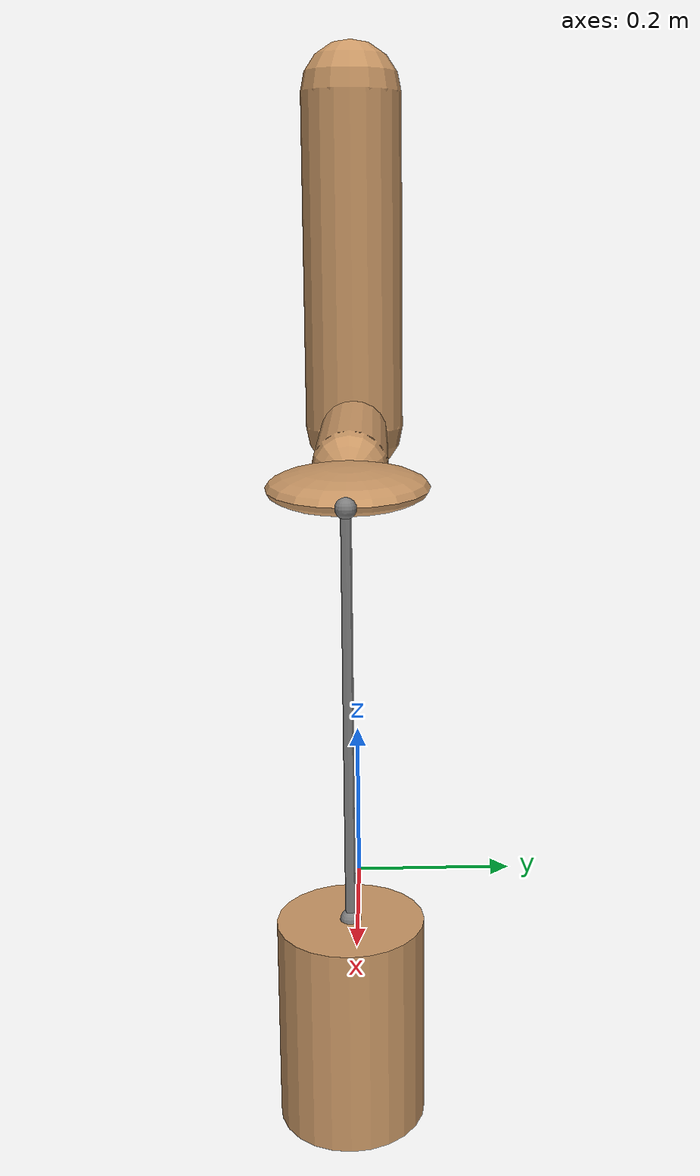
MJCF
<mujoco model="example">
    <compiler coordinate="global"/>
    <default>
        <geom rgba=".8 .6 .4 1"/>
    </default>
    <asset>
        <texture type="skybox" builtin="gradient" rgb1="1 1 1" rgb2=".6 .8 1"
            width="256" height="256"/>
        <texture builtin="gradient" height="100" rgb1="1 1 1" rgb2="0 0 0" type="skybox" width="100"/>
        <texture builtin="flat" height="1278" mark="cross" markrgb="1 1 1" name="texgeom" random="0.01" rgb1="0.8 0.6 0.4" rgb2="0.8 0.6 0.4" type="cube" width="127"/>
        <texture builtin="checker" height="100" name="texplane" rgb1="0 0 0" rgb2="0.8 0.8 0.8" type="2d" width="100"/>
        <material name="MatPlane" reflectance="0.5" shininess="1" specular="1" texrepeat="30 30" texture="texplane"/>
        <material name="geom" texture="texgeom" texuniform="true"/>
    </asset>
    <worldbody>
        <light pos="0 1 1" dir="0 -1 -1" diffuse="1 1 1"/>
        <body>
            <geom type="capsule" fromto="0 0 1  0 0 0.6" size="0.06"/>
            <joint type="ball" pos="0 0 1" name="shoulder" />
            <body>
                <geom type="capsule" fromto="0 0 0.6  0.3 0 0.6" size="0.04"/>
                <joint type="hinge" pos="0 0 0.6" axis="0 1 0" name="elbow1" />
                <joint type="hinge" pos="0 0 0.6" axis="1 0 0" name="elbow2" />
                <body>
                    <geom type="ellipsoid" pos="0.4 0 0.6" size="0.1 0.08 0.02"/>
                    <site name="end1" pos="0.5 0 0.6" type="sphere" size="0.01"/>
                    <joint type="hinge" pos="0.3 0 0.6" axis="0 1 0" name="wrist1"/>
                    <joint type="hinge" pos="0.3 0 0.6" axis="0 0 1" name="wrist2"/>
                </body>
            </body>
        </body>
        <body name="box">
            <!--  z points up -->
            <geom type="cylinder" fromto="0.5 0 0.2  0.5 0 0" size="0.07"/>
            <site name="end2" pos="0.5 0 0.2" type="sphere" size="0.01"/>
            <joint type="free"/>
        </body>
    </worldbody>
    <tendon>
        <spatial limited="true" range="0 0.6" width="0.005">
            <site site="end1"/>
            <site site="end2"/>
        </spatial>
    </tendon>
    <actuator>
		<motor ctrlrange="-2 2" joint="shoulder" name="shoulder_motor"/>
        <motor ctrlrange="-2 2" joint="elbow1" name="elbow1_motor" />
        <motor ctrlrange="-2 2" joint="elbow2" name="elbow2_motor" />
        <motor ctrlrange="-2 2" joint="wrist1" name="wrist1_motor" />
        <motor ctrlrange="-2 2" joint="wrist2" name="wrist2_motor" />
	</actuator>
</mujoco>
